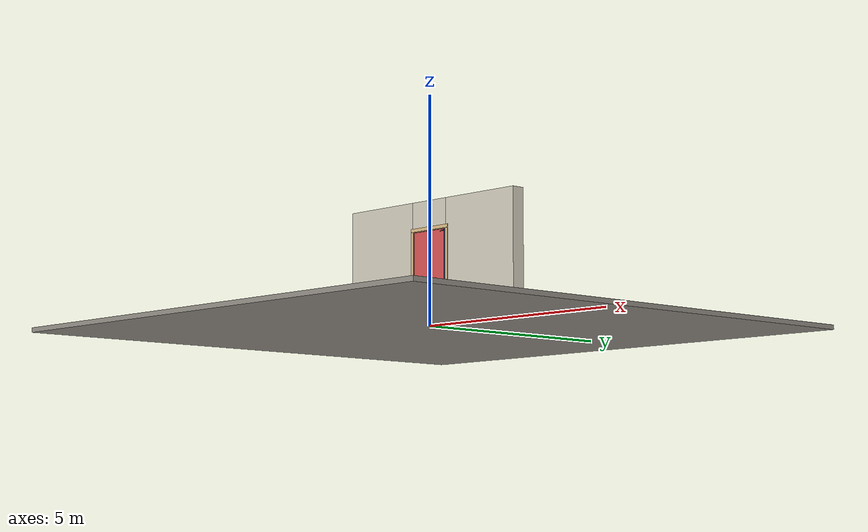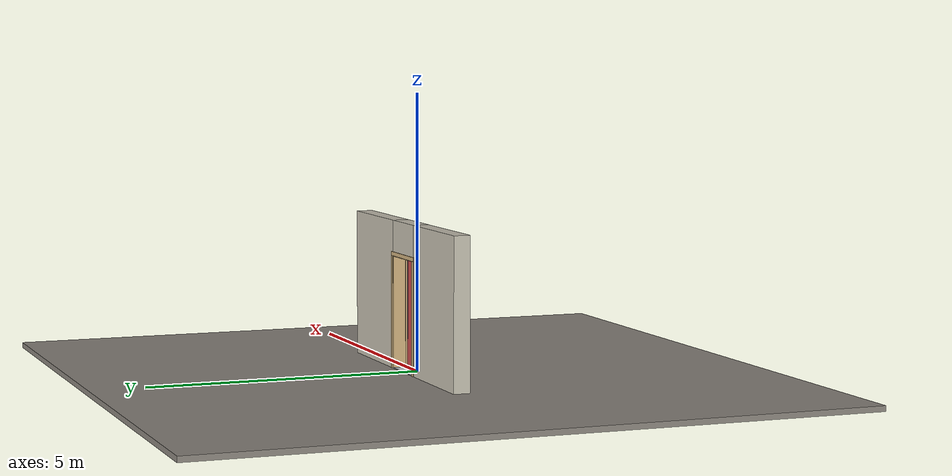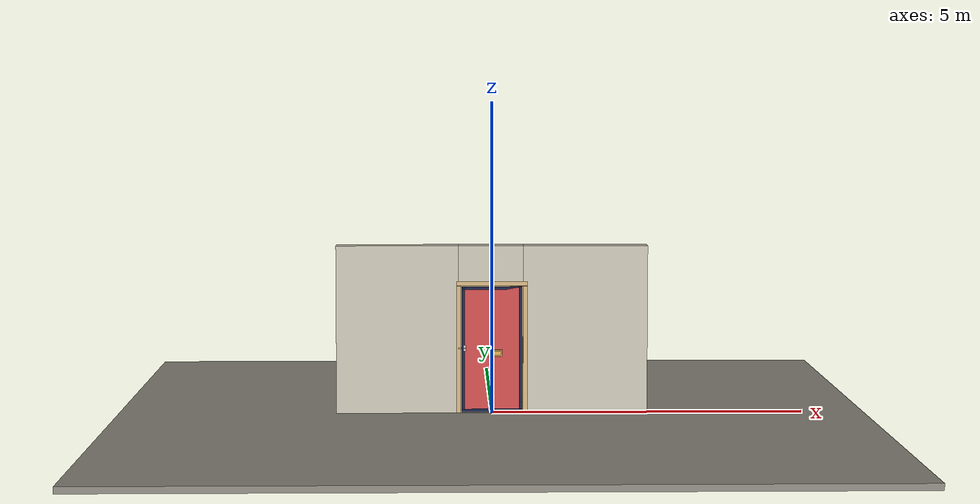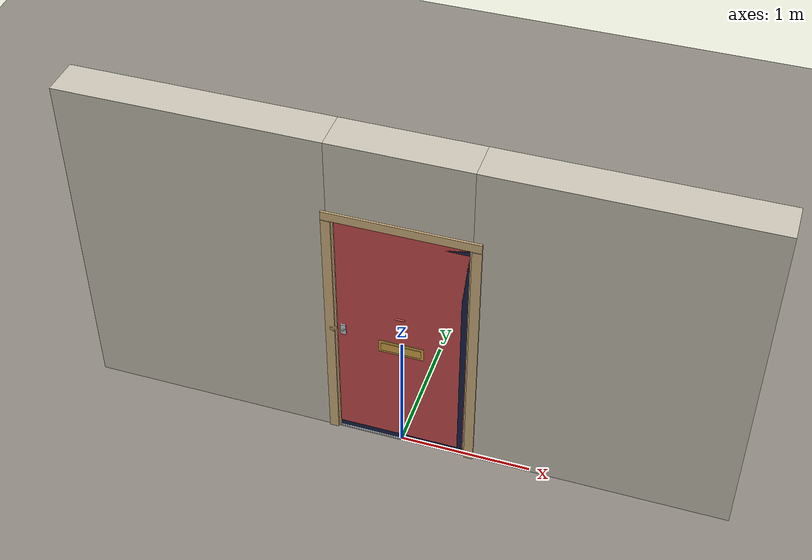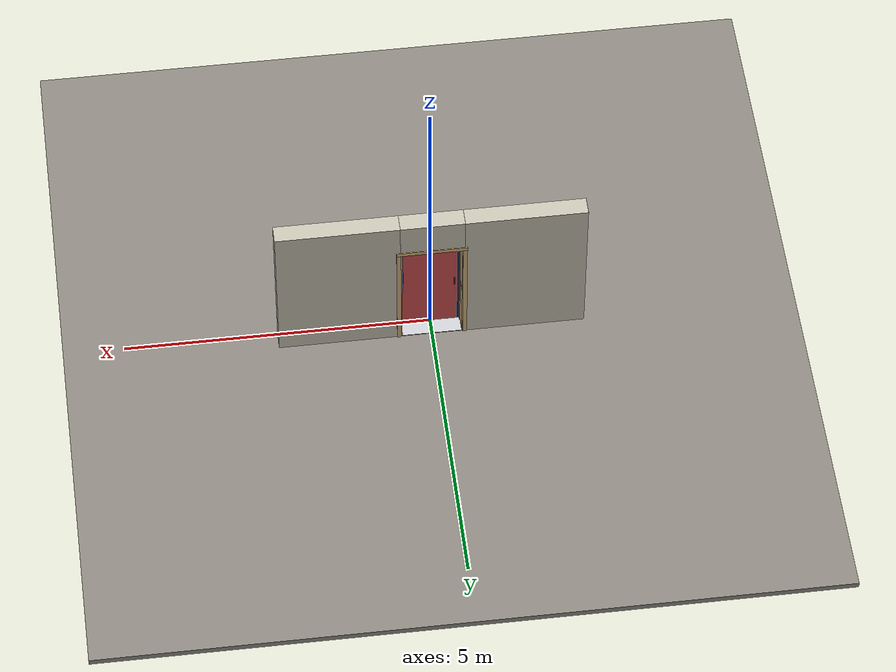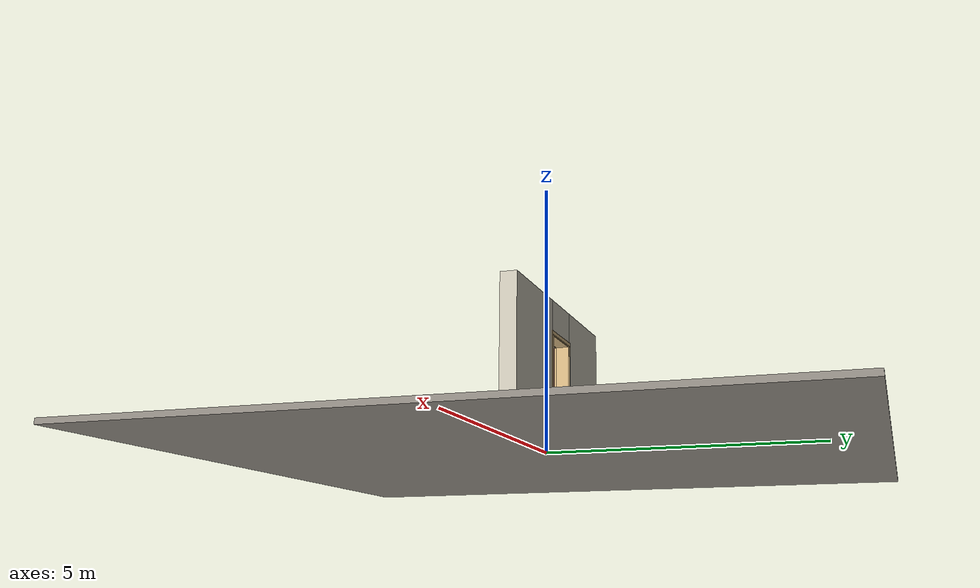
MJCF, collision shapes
<?xml version="1.0" ?>
<mujoco model="db0450_swing_single_full">
  <compiler angle="radian" meshdir="../../hardware" texturedir="../../textures" autolimits="true" inertiafromgeom="false"/>
  <option timestep="0.002" integrator="implicitfast" cone="elliptic" impratio="10" noslip_iterations="3">
    <flag multiccd="enable"/>
  </option>
  <size memory="16M"/>
  <default>
    <geom condim="4" solref="0.005 1" solimp="0.95 0.99 0.001"/>
    <joint solreflimit="0.005 1" solimplimit="0.95 0.99 0.001"/>
    <tendon solreflimit="0.005 1"/>
    <equality solref="0.002 1"/>
  </default>
  <visual>
    <headlight ambient="0.4 0.4 0.4" diffuse="0.7 0.7 0.7" specular="0.2 0.2 0.2"/>
    <quality shadowsize="4096"/>
    <map znear="0.01" zfar="60"/>
  </visual>
  <asset>
    <mesh name="hinge_15fcbc0360" file="hinge_15fcbc0360.obj"/>
    <mesh name="hinge_jamb_ba35ce4e6a" file="hinge_jamb_ba35ce4e6a.obj"/>
    <mesh name="house_numbers_ad0a8e8be0" file="house_numbers_ad0a8e8be0.obj"/>
    <mesh name="knocker_a8f2ce0ad7" file="knocker_a8f2ce0ad7.obj"/>
    <mesh name="pull_1e5d69a91a" file="pull_1e5d69a91a.obj"/>
    <material name="mat_floor" rgba="0.55 0.53 0.5 1" specular="0.2" shininess="0.15" reflectance="0"/>
    <material name="mat_wall" rgba="0.78 0.76 0.7 1" specular="0.2" shininess="0.1" reflectance="0"/>
    <material name="mat_leaf" rgba="0.09 0.13 0.28 1" specular="0.2" shininess="0.58" reflectance="0"/>
    <material name="mat_mesh_infill" rgba="0.6 0.62 0.64 0.55" specular="0.68" shininess="0.3" reflectance="0.1"/>
    <material name="mat_hinge" rgba="0.65 0.66 0.68 1" specular="0.74" shininess="0.5" reflectance="0.36"/>
    <material name="mat_op_aluminum" rgba="0.8 0.81 0.83 1" specular="0.8" shininess="0.6" reflectance="0.4"/>
    <material name="mat_op_stainless" rgba="0.75 0.76 0.77 1" specular="0.8" shininess="0.65" reflectance="0.4"/>
    <material name="mat_bolt" rgba="0.85 0.66 0.3 1" specular="0.8" shininess="0.75" reflectance="0.4"/>
    <material name="mat_frame" rgba="0.82 0.7 0.5 1" specular="0.2" shininess="0.45" reflectance="0"/>
    <material name="mat_seal" rgba="0.1 0.1 0.1 1" specular="0.2" shininess="0.1" reflectance="0"/>
    <material name="mat_threshold" rgba="0.8 0.81 0.83 1" specular="0.8" shininess="0.6" reflectance="0.4"/>
    <material name="mat_mailslot" rgba="0.85 0.66 0.3 1" specular="0.8" shininess="0.75" reflectance="0.4"/>
    <material name="mat_knocker" rgba="0.55 0.42 0.22 1" specular="0.74" shininess="0.45" reflectance="0.36"/>
    <material name="mat_numbers" rgba="0.05 0.05 0.05 1" specular="0.38" shininess="0.3" reflectance="0.12"/>
    <texture name="skybox" type="skybox" builtin="gradient" rgb1="0.6 0.7 0.85" rgb2="0.9 0.92 0.95" width="256" height="256"/>
  </asset>
  <worldbody>
    <light name="sun" pos="1.5 -2.5 4" dir="-0.3 0.5 -0.8" directional="true" diffuse="0.8 0.8 0.8" specular="0.3 0.3 0.3" castshadow="true"/>
    <light name="fill" pos="-1.5 2.5 3" dir="0.3 -0.5 -0.7" directional="true" diffuse="0.35 0.35 0.4" castshadow="false"/>
    <camera name="robot_view" pos="0 -2.413187 1.734312" xyaxes="1 0 0 0 0.26963 0.962964" fovy="52"/>
    <camera name="far_view" pos="0 2.671187 1.734312" xyaxes="-1 0 0 0 -0.26963 0.962964" fovy="52"/>
    <camera name="iso" pos="-1.932062 -2.006438 2.141063" xyaxes="0.741536 -0.670913 0 0.242917 0.268487 0.932151" fovy="46"/>
    <camera name="detail_handle" pos="-0.212 -0.726 1.33" xyaxes="0.97561 0.219512 0 -0.070934 0.315262 0.94635" fovy="38"/>
    <geom name="floor" type="box" size="6 6 0.05" pos="0 0 -0.05" material="mat_floor" group="0" contype="1" conaffinity="1" friction="0.8 0.005 0.0001" density="2400"/>
    <geom name="wall_left" type="box" size="0.9825 0.15 1.35" pos="-1.5175 0.129 1.35" material="mat_wall" group="0" contype="1" conaffinity="1" friction="0.6 0.005 0.0001" density="800"/>
    <geom name="wall_right" type="box" size="0.9975 0.15 1.35" pos="1.5025 0.129 1.35" material="mat_wall" group="0" contype="1" conaffinity="1" friction="0.6 0.005 0.0001" density="800"/>
    <geom name="wall_header" type="box" size="0.52 0.15 0.303" pos="-0.015 0.129 2.397" material="mat_wall" group="0" contype="1" conaffinity="1" friction="0.6 0.005 0.0001" density="800"/>
    <geom name="hinge_0_jamb" type="mesh" mesh="hinge_jamb_ba35ce4e6a" pos="0.483 -0.021 0.267" quat="0 0 1 0" material="mat_hinge" group="1" contype="0" conaffinity="0" density="7850"/>
    <geom name="hinge_1_jamb" type="mesh" mesh="hinge_jamb_ba35ce4e6a" pos="0.483 -0.021 1.029" quat="0 0 1 0" material="mat_hinge" group="1" contype="0" conaffinity="0" density="7850"/>
    <geom name="hinge_2_jamb" type="mesh" mesh="hinge_jamb_ba35ce4e6a" pos="0.483 -0.021 1.861" quat="0 0 1 0" material="mat_hinge" group="1" contype="0" conaffinity="0" density="7850"/>
    <geom name="jamb_hinge" type="box" size="0.0095 0.15 1.0225" pos="0.4955 0.129 1.0225" material="mat_frame" group="0" contype="1" conaffinity="1" friction="0.6 0.005 0.0001" density="400"/>
    <geom name="strike_1050_wall_n" type="box" size="0.0245 0.13675 0.0115" pos="-0.5105 0.14225 1.05" material="mat_frame" group="0" contype="1" conaffinity="1" friction="0.6 0.005 0.0001" density="400"/>
    <geom name="strike_1050_wall_p" type="box" size="0.0245 0.008 0.0115" pos="-0.5105 -0.0135 1.05" material="mat_frame" group="0" contype="1" conaffinity="1" friction="0.6 0.005 0.0001" density="400"/>
    <geom name="strike_1050_ramp" type="box" size="0.0245 0.015977 0.0115" pos="-0.514502 -0.028066 1.05" quat="0.984601 0 0 -0.174819" material="mat_frame" group="0" contype="1" conaffinity="1" friction="0.12 0.005 0.0001" density="400"/>
    <geom name="strike_1050_back" type="box" size="0.0175 0.0055 0.0115" pos="-0.5175 0 1.05" material="mat_frame" group="0" contype="1" conaffinity="1" friction="0.6 0.005 0.0001" density="400"/>
    <geom name="jamb_strike_0" type="box" size="0.0245 0.15 0.51925" pos="-0.5105 0.129 0.51925" material="mat_frame" group="0" contype="1" conaffinity="1" friction="0.6 0.005 0.0001" density="400"/>
    <geom name="jamb_strike_1" type="box" size="0.0245 0.15 0.49175" pos="-0.5105 0.129 1.55325" material="mat_frame" group="0" contype="1" conaffinity="1" friction="0.6 0.005 0.0001" density="400"/>
    <geom name="jamb_head" type="box" size="0.52 0.15 0.0095" pos="-0.015 0.129 2.0545" material="mat_frame" group="0" contype="1" conaffinity="1" friction="0.6 0.005 0.0001" density="400"/>
    <geom name="head_stud" type="box" size="0.52 0.15 0.015" pos="-0.015 0.129 2.079" material="mat_wall" group="0" contype="1" conaffinity="1" friction="0.6 0.005 0.0001" density="500"/>
    <geom name="stop_hinge" type="box" size="0.0055 0.016 1.0225" pos="0.4805 0.0305 1.0225" material="mat_frame" group="0" contype="1" conaffinity="1" friction="0.6 0.005 0.0001" density="400"/>
    <geom name="stop_strike" type="box" size="0.0055 0.016 1.0225" pos="-0.4805 0.0305 1.0225" material="mat_frame" group="0" contype="1" conaffinity="1" friction="0.6 0.005 0.0001" density="400"/>
    <geom name="stop_head" type="box" size="0.486 0.016 0.0055" pos="0 0.0305 2.0395" material="mat_frame" group="0" contype="1" conaffinity="1" friction="0.6 0.005 0.0001" density="400"/>
    <geom name="seal_hinge" type="box" size="0.004 0.003 1.0225" pos="0.483 0.017 1.0225" material="mat_seal" group="1" contype="0" conaffinity="0" density="1100"/>
    <geom name="seal_strike" type="box" size="0.004 0.003 1.0225" pos="-0.483 0.017 1.0225" material="mat_seal" group="1" contype="0" conaffinity="0" density="1100"/>
    <geom name="seal_head" type="box" size="0.466 0.003 0.008" pos="0 0.017 2.033" material="mat_seal" group="1" contype="0" conaffinity="0" density="1100"/>
    <geom name="casing_l_n" type="box" size="0.035 0.008 1.032" pos="-0.535 -0.029 1.0225" material="mat_frame" group="2" contype="0" conaffinity="0" density="400"/>
    <geom name="casing_r_n" type="box" size="0.035 0.008 1.032" pos="0.535 -0.029 1.0225" material="mat_frame" group="2" contype="0" conaffinity="0" density="400"/>
    <geom name="casing_h_n" type="box" size="0.57 0.008 0.035" pos="0 -0.029 2.094" material="mat_frame" group="2" contype="0" conaffinity="0" density="400"/>
    <geom name="casing_l_p" type="box" size="0.035 0.008 1.032" pos="-0.535 0.287 1.0225" material="mat_frame" group="2" contype="0" conaffinity="0" density="400"/>
    <geom name="casing_r_p" type="box" size="0.035 0.008 1.032" pos="0.535 0.287 1.0225" material="mat_frame" group="2" contype="0" conaffinity="0" density="400"/>
    <geom name="casing_h_p" type="box" size="0.57 0.008 0.035" pos="0 0.287 2.094" material="mat_frame" group="2" contype="0" conaffinity="0" density="400"/>
    <geom name="threshold" type="box" size="0.505 0.15 0.0065" pos="0 0.129 0.0065" material="mat_threshold" group="0" contype="1" conaffinity="1" friction="0.5 0.005 0.0001" density="2700"/>
    <site name="approach_point" pos="0 -1.5 0" quat="1 0 0 0" size="0.05" rgba="0.2 0.9 0.2 0.5" group="4"/>
    <site name="goal_point" pos="0 1.5 0" quat="1 0 0 0" size="0.05" rgba="0.2 0.9 0.2 0.5" group="4"/>
    <site name="door_plane_center" pos="0 0 1.0225" quat="1 0 0 0" size="0.02" rgba="0.2 0.9 0.2 0.5" group="4"/>
    <body name="leaf" pos="0.486 0 0">
      <inertial pos="-0.485851 -0.000085 1.028828" mass="148.509147" quat="0.500275 0.499716 -0.500272 0.499737" diaginertia="11.507113505 49.931030078 61.413673151"/>
      <joint name="leaf_hinge" type="hinge" axis="0 0 1" pos="-0.003 -0.021 0" limited="true" range="0 1.570796" solreflimit="0.02 1" damping="0.368237" frictionloss="2.363976" armature="0.02"/>
      <geom name="leaf_slab_col" type="box" size="0.4825 0.014 1.012" pos="-0.4855 0 1.029" material="mat_leaf" group="3" contype="1" conaffinity="1" rgba="0.8 0.3 0.3 0.25" friction="0.35 0.005 0.0001" density="1"/>
      <geom name="leaf_rail_b" type="box" size="0.4825 0.014 0.0225" pos="-0.4855 0 0.0395" material="mat_leaf" group="1" contype="0" conaffinity="0" density="1"/>
      <geom name="leaf_rail_t" type="box" size="0.4825 0.014 0.0225" pos="-0.4855 0 2.0185" material="mat_leaf" group="1" contype="0" conaffinity="0" density="1"/>
      <geom name="leaf_stile_h" type="box" size="0.0225 0.014 1.012" pos="-0.0255 0 1.029" material="mat_leaf" group="1" contype="0" conaffinity="0" density="1"/>
      <geom name="leaf_stile_l" type="box" size="0.0225 0.014 1.012" pos="-0.9455 0 1.029" material="mat_leaf" group="1" contype="0" conaffinity="0" density="1"/>
      <geom name="leaf_mesh" type="box" size="0.4375 0.0015 0.967" pos="-0.4855 0 1.029" material="mat_mesh_infill" group="1" contype="0" conaffinity="0" density="1"/>
      <geom name="hinge_0" type="mesh" mesh="hinge_15fcbc0360" pos="-0.003 -0.021 0.267" quat="0 0 1 0" material="mat_hinge" group="1" contype="0" conaffinity="0" density="7850"/>
      <geom name="hinge_1" type="mesh" mesh="hinge_15fcbc0360" pos="-0.003 -0.021 1.029" quat="0 0 1 0" material="mat_hinge" group="1" contype="0" conaffinity="0" density="7850"/>
      <geom name="hinge_2" type="mesh" mesh="hinge_15fcbc0360" pos="-0.003 -0.021 1.861" quat="0 0 1 0" material="mat_hinge" group="1" contype="0" conaffinity="0" density="7850"/>
      <geom name="leaf_inside_pull_p" type="mesh" mesh="pull_1e5d69a91a" pos="-0.878 0.014 1.05" quat="0 0 0.707107 0.707107" material="mat_op_stainless" group="1" contype="0" conaffinity="0" density="3000"/>
      <geom name="leaf_inside_pull_col_p" type="capsule" size="0.0095 0.08" pos="-0.878 0.074 1.05" material="mat_op_stainless" group="3" contype="1" conaffinity="1" rgba="0.8 0.3 0.3 0.25" friction="0.7 0.01 0.0001" density="3000"/>
      <geom name="leaf_pushbutton_housing" type="box" size="0.02 0.006 0.045" pos="-0.923 -0.02 1.05" material="mat_op_aluminum" group="1" contype="0" conaffinity="0" density="2700"/>
      <geom name="leaf_latch_bolt_faceplate" type="box" size="0.0006 0.01 0.0215" pos="-0.9674 0 1.05" material="mat_bolt" group="1" contype="0" conaffinity="0" density="8500"/>
      <geom name="mail_slot_frame" type="box" size="0.17 0.003 0.055" pos="-0.4855 -0.017 0.967" material="mat_mailslot" group="2" contype="0" conaffinity="0" density="8500"/>
      <geom name="house_numbers" type="mesh" mesh="house_numbers_ad0a8e8be0" pos="-0.4855 -0.014 1.691" quat="0 0 -0.707107 0.707107" material="mat_numbers" group="2" contype="0" conaffinity="0" density="1000"/>
      <site name="leaf_inside_pull_grip_p" pos="-0.878 0.074 1.05" quat="1 0 0 0" size="0.012" rgba="0.2 0.9 0.2 0.5" group="4"/>
      <site name="leaf_edge_mid" pos="-0.968 0 1.012" quat="1 0 0 0" size="0.02" rgba="0.2 0.9 0.2 0.5" group="4"/>
      <body name="leaf_pushbutton" pos="-0.923 -0.024 1.05">
        <inertial pos="0 -0.006 0" mass="0.010179" quat="0 0 0.707107 0.707107" diaginertia="0.000000377 0.000000377 0.000000509"/>
        <joint name="leaf_pushbutton_slide" type="slide" axis="0 1 0" limited="true" range="0 0.006" damping="16.008936" frictionloss="0.5" stiffness="400" springref="-0.0075" armature="0.15"/>
        <geom name="leaf_pushbutton_geom" type="cylinder" size="0.01 0.006" pos="0 -0.006 0" quat="0.707107 -0.707107 0 0" material="mat_op_aluminum" group="0" contype="1" conaffinity="1" friction="0.6 0.005 0.0001" density="2700"/>
        <site name="leaf_push" pos="0 -0.012 0" quat="1 0 0 0" size="0.01" rgba="0.2 0.9 0.2 0.5" group="4"/>
      </body>
      <body name="leaf_latch_bolt" pos="-0.968 0 1.05">
        <inertial pos="0.008 0 0" mass="0.014242" quat="0 0 -0.707107 0.707107" diaginertia="0.00000011 0.000001386 0.000001386"/>
        <joint name="leaf_latch_bolt_slide" type="slide" axis="1 0 0" limited="true" range="0 0.01" damping="2" frictionloss="0.3" stiffness="300" springref="-0.006667" armature="0.1"/>
        <geom name="leaf_latch_bolt_capsule" type="capsule" size="0.004 0.014" pos="0.008 0 0" quat="0.707107 0 -0.707107 0" material="mat_bolt" group="0" contype="1" conaffinity="1" friction="0.2 0.005 0.0001" density="8500"/>
      </body>
      <body name="mail_slot_flap" pos="-0.4855 -0.0225 1.002">
        <inertial pos="0 0 -0.035" mass="0.714" quat="0 0 0.707107 0.707107" diaginertia="0.000292502 0.005355952 0.00564655"/>
        <joint name="mail_slot_hinge" type="hinge" axis="-1 0 0" limited="true" range="0 1.2" damping="0.01" stiffness="0.3" springref="-0.3" armature="0.002"/>
        <geom name="mail_slot_flap_geom" type="box" size="0.15 0.002 0.035" pos="0 0 -0.035" material="mat_mailslot" group="0" contype="1" conaffinity="1" friction="0.6 0.005 0.0001" density="8500"/>
      </body>
      <body name="knocker" pos="-0.4855 -0.014 1.297">
        <inertial pos="0 -0.010216 0.001203" mass="0.814961" quat="0.49606 0.50391 0.50391 -0.49606" diaginertia="0.000611431 0.001116108 0.001534609"/>
        <joint name="knocker_hinge" type="hinge" axis="-1 0 0" pos="0 0 0.055" limited="true" range="0 0.6" damping="0.005" armature="0.002"/>
        <geom name="knocker_mesh" type="mesh" mesh="knocker_a8f2ce0ad7" pos="0 0 0" quat="0 0 -0.707107 0.707107" material="mat_knocker" group="2" contype="0" conaffinity="0" density="8500"/>
        <geom name="knocker_col" type="capsule" size="0.007 0.03" pos="0 -0.025 -0.01" quat="0.707107 0 0.707107 0" material="mat_knocker" group="3" contype="1" conaffinity="1" rgba="0.8 0.3 0.3 0.25" friction="0.6 0.005 0.0001" density="8500"/>
      </body>
    </body>
  </worldbody>
  <tendon>
    <fixed name="leaf_latch_bolt_coupling" limited="true" range="0 10">
      <joint joint="leaf_latch_bolt_slide" coef="1"/>
      <joint joint="leaf_pushbutton_slide" coef="-2"/>
    </fixed>
  </tendon>
  <sensor>
    <jointpos name="leaf_hinge_pos" joint="leaf_hinge"/>
    <jointvel name="leaf_hinge_vel" joint="leaf_hinge"/>
    <jointpos name="leaf_pushbutton_slide_pos" joint="leaf_pushbutton_slide"/>
    <jointvel name="leaf_pushbutton_slide_vel" joint="leaf_pushbutton_slide"/>
    <jointpos name="leaf_latch_bolt_slide_pos" joint="leaf_latch_bolt_slide"/>
    <jointvel name="leaf_latch_bolt_slide_vel" joint="leaf_latch_bolt_slide"/>
  </sensor>
</mujoco>
